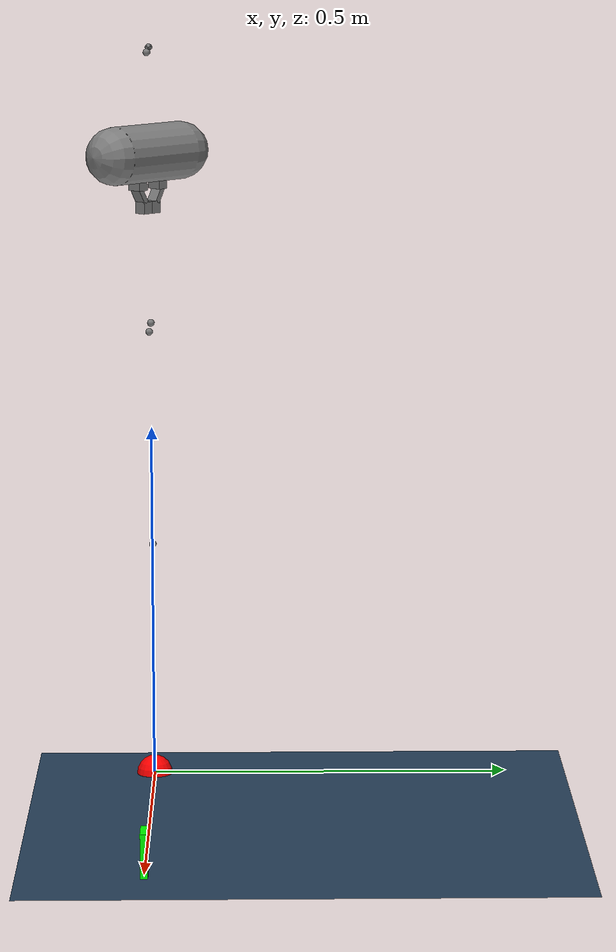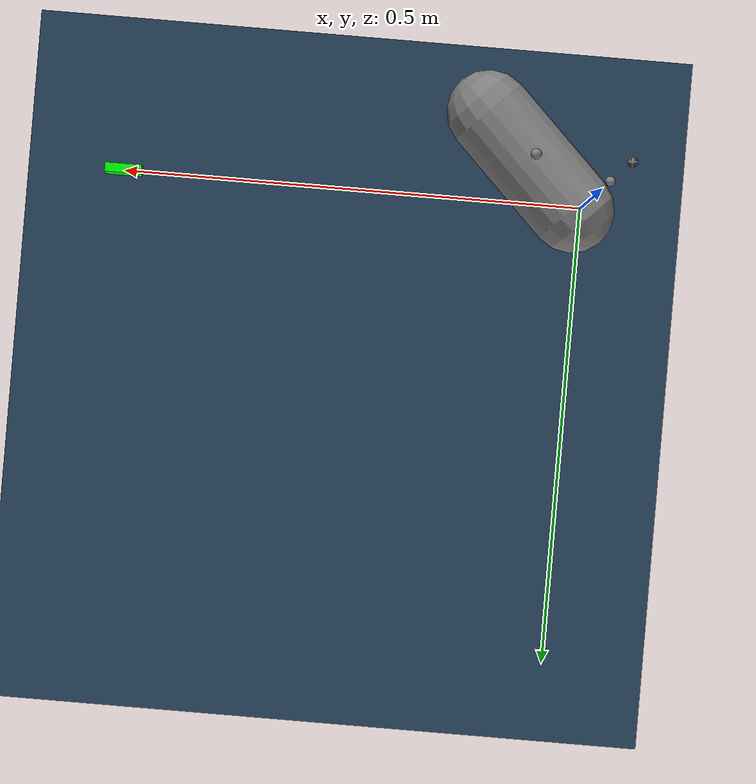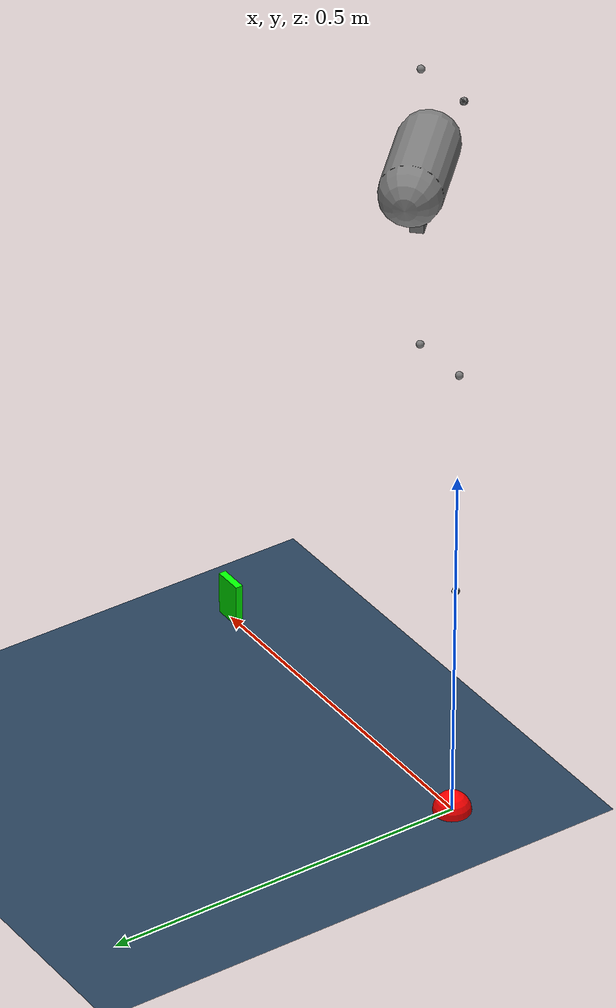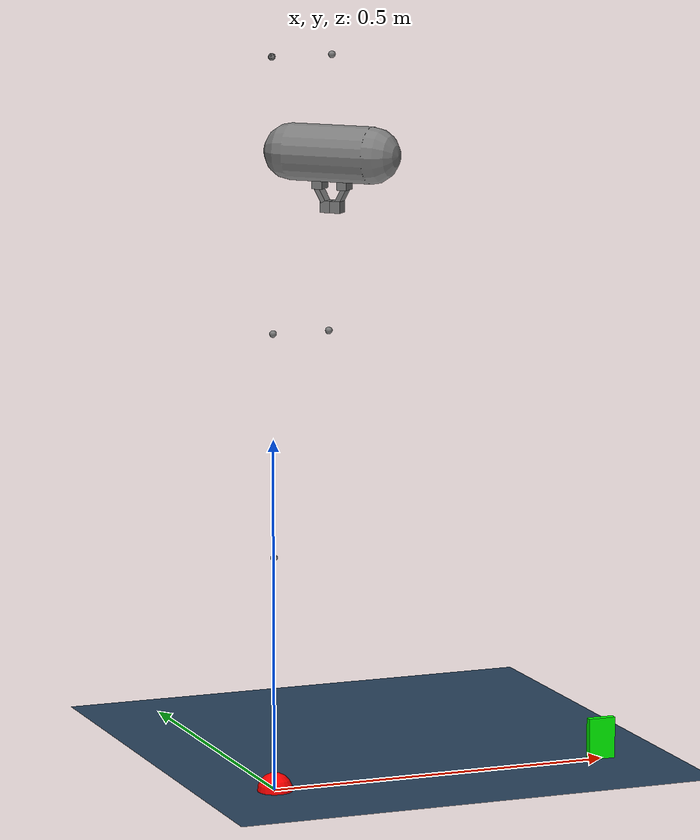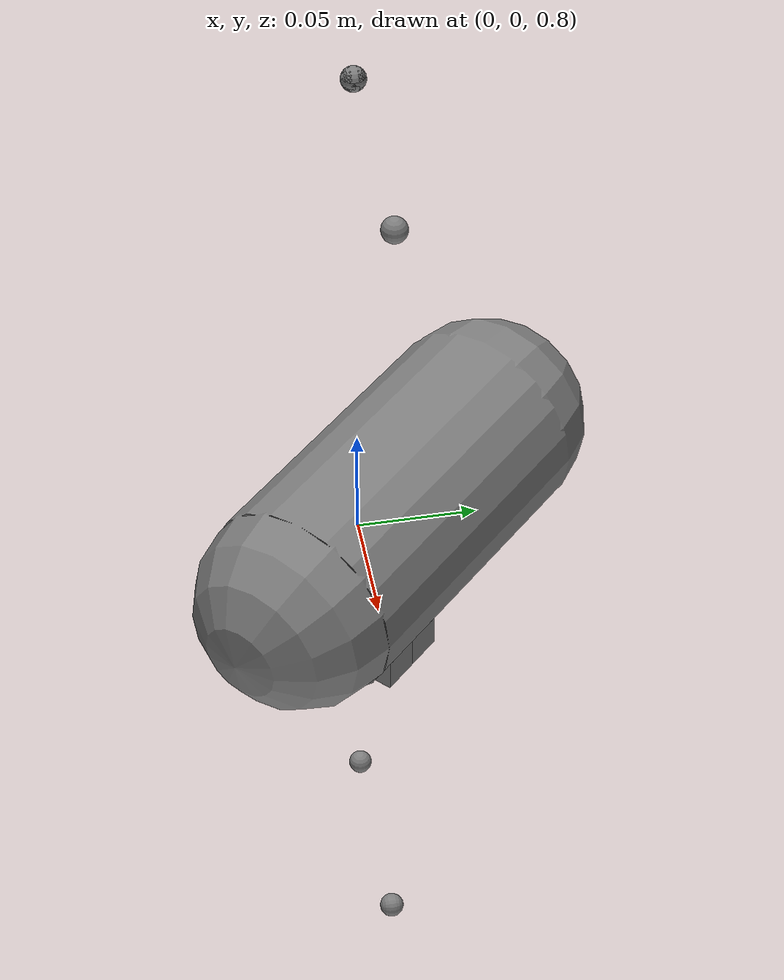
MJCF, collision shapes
<mujoco model="panda scene">
  <include file="mjx_scene.xml"/>

  <worldbody>
    <body name="box" pos="0.5 0 0.03">
      <freejoint/>
      <geom type="box" name="box" size="0.02 0.005 0.03" condim="3" mass="0.1"
       friction="1 .03 .003" rgba="0 1 0 1" contype="2" conaffinity="1" solref="0.01 1"/>
    </body>
    <body mocap="true" name="mocap_target">
      <geom type="sphere" size="0.025" rgba="1 0 0 1" contype="0" conaffinity="0"/>
    </body>
  </worldbody>

  <worldbody>
    <camera name="top" pos="0 0 1" zaxis="0 0 1" fovy="60"/>
    <camera name="side" pos="0 -1 0.5" zaxis="0 -1 0" fovy="60"/>
  </worldbody>

  <keyframe>
    <key name="home"
      qpos="0 0.3 0 -1.57079 0 2.0 0.7853 0.00 0.04 0.7 0 0.03 1 0 0 0"
      ctrl="0 0.3 0 -1.57079 0 2.0 0.7853 0.00"/>
    <key name="pickup"
      qpos="0.2897 0.50732 -0.140016 -2.176 -0.0310497 2.51592 -0.49251 0.04 0.0399982 0.511684 0.0645413 0.0298665 0.665781 2.76848e-17 -2.27527e-17 -0.746147"
      ctrl="0.2897 0.423 -0.144392 -2.13105 -0.0291743 2.52586 -0.492492 0.04"/>
    <key name="pickup1"
      qpos='0.2897 0.496673 -0.142836 -2.14746 -0.0295746 2.52378 -0.492496 0.04 0.0399988 0.529553 0.0731702 0.0299388 0.94209 8.84613e-06 -4.97524e-06 -0.335361'
      ctrl="0.2897 0.458 -0.144392 -2.13105 -0.0291743 2.52586 -0.492492 0.04"/>
  </keyframe>
</mujoco>

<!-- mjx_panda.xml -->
<mujoco model="panda">
  <compiler angle="radian" meshdir="assets" autolimits="true"/>

  <default>
    <default class="panda">
      <material specular="0.5" shininess="0.25"/>
      <joint armature="0.1" damping="1" axis="0 0 1" range="-2.8973 2.8973"/>
      <general dyntype="none" biastype="affine" ctrlrange="-2.8973 2.8973" forcerange="-87 87"/>
      <position forcerange="-100 100"/>
      <default class="finger">
        <joint axis="0 1 0" type="slide" range="0 0.04"/>
      </default>

      <default class="visual">
        <geom type="mesh" contype="0" conaffinity="0" group="2"/>
      </default>
      <default class="collision">
        <geom group="3" type="mesh" contype="0" conaffinity="0"/>
        <default class="primitive_collision">
          <geom group="3" type="box" contype="0" conaffinity="0"
           condim="3" solimp="0.99 0.995 0.01" solref="0.01 1" friction="1 0.005 0.0001"/>
          <default class="fingertip_pad_collision_1">
            <geom type="box" size="0.011 0.0075 0.01" pos="0 0.0185 0.011"/>
          </default>
          <default class="fingertip_pad_collision_2">
            <geom type="box" size="0.011 0.0044 0.0019" pos="0 0.0068 0.0022"/>
          </default>
          <default class="fingertip_pad_collision_3">
            <geom type="box" size="0.00875 0.0035 0.01175" pos="0 0.0159 0.02835" quat="1 0.25 0 0"/>
          </default>
          <default class="fingertip_pad_collision_4">
            <geom type="box" size="0.00875 0.0076 0.00825" pos="0 0.00758 0.04525" conaffinity="3"/>
          </default>
        </default>
      </default>
    </default>
  </default>

  <asset>
    <material class="panda" name="white" rgba="1 1 1 1"/>
    <material class="panda" name="off_white" rgba="0.901961 0.921569 0.929412 1"/>
    <material class="panda" name="black" rgba="0.25 0.25 0.25 1"/>
    <material class="panda" name="green" rgba="0 1 0 1"/>
    <material class="panda" name="light_blue" rgba="0.039216 0.541176 0.780392 1"/>

    <!-- Collision meshes -->
    <mesh name="link0_c" file="link0.stl"/>
    <mesh name="link1_c" file="link1.stl"/>
    <mesh name="link2_c" file="link2.stl"/>
    <mesh name="link3_c" file="link3.stl"/>
    <mesh name="link4_c" file="link4.stl"/>
    <mesh name="link5_c0" file="link5_collision_0.obj"/>
    <mesh name="link5_c1" file="link5_collision_1.obj"/>
    <mesh name="link5_c2" file="link5_collision_2.obj"/>
    <mesh name="link6_c" file="link6.stl"/>
    <mesh name="link7_c" file="link7.stl"/>
    <mesh name="hand_c" file="hand.stl"/>

    <!-- Visual meshes -->
    <mesh file="link0_0.obj"/>
    <mesh file="link0_1.obj"/>
    <mesh file="link0_2.obj"/>
    <mesh file="link0_3.obj"/>
    <mesh file="link0_4.obj"/>
    <mesh file="link0_5.obj"/>
    <mesh file="link0_7.obj"/>
    <mesh file="link0_8.obj"/>
    <mesh file="link0_9.obj"/>
    <mesh file="link0_10.obj"/>
    <mesh file="link0_11.obj"/>
    <mesh file="link1.obj"/>
    <mesh file="link2.obj"/>
    <mesh file="link3_0.obj"/>
    <mesh file="link3_1.obj"/>
    <mesh file="link3_2.obj"/>
    <mesh file="link3_3.obj"/>
    <mesh file="link4_0.obj"/>
    <mesh file="link4_1.obj"/>
    <mesh file="link4_2.obj"/>
    <mesh file="link4_3.obj"/>
    <mesh file="link5_0.obj"/>
    <mesh file="link5_1.obj"/>
    <mesh file="link5_2.obj"/>
    <mesh file="link6_0.obj"/>
    <mesh file="link6_1.obj"/>
    <mesh file="link6_2.obj"/>
    <mesh file="link6_3.obj"/>
    <mesh file="link6_4.obj"/>
    <mesh file="link6_5.obj"/>
    <mesh file="link6_6.obj"/>
    <mesh file="link6_7.obj"/>
    <mesh file="link6_8.obj"/>
    <mesh file="link6_9.obj"/>
    <mesh file="link6_10.obj"/>
    <mesh file="link6_11.obj"/>
    <mesh file="link6_12.obj"/>
    <mesh file="link6_13.obj"/>
    <mesh file="link6_14.obj"/>
    <mesh file="link6_15.obj"/>
    <mesh file="link6_16.obj"/>
    <mesh file="link7_0.obj"/>
    <mesh file="link7_1.obj"/>
    <mesh file="link7_2.obj"/>
    <mesh file="link7_3.obj"/>
    <mesh file="link7_4.obj"/>
    <mesh file="link7_5.obj"/>
    <mesh file="link7_6.obj"/>
    <mesh file="link7_7.obj"/>
    <mesh file="hand_0.obj"/>
    <mesh file="hand_1.obj"/>
    <mesh file="hand_2.obj"/>
    <mesh file="hand_3.obj"/>
    <mesh file="hand_4.obj"/>
    <mesh file="finger_0.obj"/>
    <mesh file="finger_1.obj"/>
  </asset>

  <worldbody>
    <light name="top" pos="0 0 2" mode="trackcom"/>
    <body name="link0" childclass="panda">
      <inertial mass="0.629769" pos="-0.041018 -0.00014 0.049974"
        fullinertia="0.00315 0.00388 0.004285 8.2904e-7 0.00015 8.2299e-6"/>
      <geom mesh="link0_0" material="off_white" class="visual"/>
      <geom mesh="link0_1" material="black" class="visual"/>
      <geom mesh="link0_2" material="off_white" class="visual"/>
      <geom mesh="link0_3" material="black" class="visual"/>
      <geom mesh="link0_4" material="off_white" class="visual"/>
      <geom mesh="link0_5" material="black" class="visual"/>
      <geom mesh="link0_7" material="white" class="visual"/>
      <geom mesh="link0_8" material="white" class="visual"/>
      <geom mesh="link0_9" material="black" class="visual"/>
      <geom mesh="link0_10" material="off_white" class="visual"/>
      <geom mesh="link0_11" material="white" class="visual"/>
      <geom mesh="link0_c" class="collision"/>
      <body name="link1" pos="0 0 0.333">
        <inertial mass="4.970684" pos="0.003875 0.002081 -0.04762"
          fullinertia="0.70337 0.70661 0.0091170 -0.00013900 0.0067720 0.019169"/>
        <joint name="joint1" damping="40"/>
        <site name="site_joint1"/>
        <geom material="white" mesh="link1" class="visual"/>
        <geom mesh="link1_c" class="collision"/>
        <body name="link2" quat="1 -1 0 0">
          <inertial mass="0.646926" pos="-0.003141 -0.02872 0.003495"
            fullinertia="0.0079620 2.8110e-2 2.5995e-2 -3.925e-3 1.0254e-2 7.04e-4"/>
          <joint name="joint2" range="-1.7628 1.7628" damping="40"/>
          <site name="site_joint2"/>
          <geom material="white" mesh="link2" class="visual"/>
          <geom mesh="link2_c" class="collision"/>
          <body name="link3" pos="0 -0.316 0" quat="1 1 0 0">
            <joint name="joint3" damping="40"/>
            <site name="site_joint3"/>
            <inertial mass="3.228604" pos="2.7518e-2 3.9252e-2 -6.6502e-2"
              fullinertia="3.7242e-2 3.6155e-2 1.083e-2 -4.761e-3 -1.1396e-2 -1.2805e-2"/>
            <geom mesh="link3_0" material="white" class="visual"/>
            <geom mesh="link3_1" material="white" class="visual"/>
            <geom mesh="link3_2" material="white" class="visual"/>
            <geom mesh="link3_3" material="black" class="visual"/>
            <geom mesh="link3_c" class="collision"/>
            <body name="link4" pos="0.0825 0 0" quat="1 1 0 0">
              <inertial mass="3.587895" pos="-5.317e-2 1.04419e-1 2.7454e-2"
                fullinertia="2.5853e-2 1.9552e-2 2.8323e-2 7.796e-3 -1.332e-3 8.641e-3"/>
              <joint name="joint4" range="-3.0718 -0.0698" damping="40"/>
              <site name="site_joint4"/>
              <geom mesh="link4_0" material="white" class="visual"/>
              <geom mesh="link4_1" material="white" class="visual"/>
              <geom mesh="link4_2" material="black" class="visual"/>
              <geom mesh="link4_3" material="white" class="visual"/>
              <geom mesh="link4_c" class="collision"/>
              <body name="link5" pos="-0.0825 0.384 0" quat="1 -1 0 0">
                <inertial mass="1.225946" pos="-1.1953e-2 4.1065e-2 -3.8437e-2"
                  fullinertia="3.5549e-2 2.9474e-2 8.627e-3 -2.117e-3 -4.037e-3 2.29e-4"/>
                <joint name="joint5" damping="2"/>
                <site name="site_joint5"/>
                <geom mesh="link5_0" material="black" class="visual"/>
                <geom mesh="link5_1" material="white" class="visual"/>
                <geom mesh="link5_2" material="white" class="visual"/>
                <geom mesh="link5_c0" class="collision"/>
                <geom mesh="link5_c1" class="collision"/>
                <geom mesh="link5_c2" class="collision"/>
                <body name="link6" quat="1 1 0 0">
                  <inertial mass="1.666555" pos="6.0149e-2 -1.4117e-2 -1.0517e-2"
                    fullinertia="1.964e-3 4.354e-3 5.433e-3 1.09e-4 -1.158e-3 3.41e-4"/>
                  <joint name="joint6" range="-0.0175 3.7525" damping="2"/>
                  <site name="site_joint6"/>
                  <geom mesh="link6_0" material="off_white" class="visual"/>
                  <geom mesh="link6_1" material="white" class="visual"/>
                  <geom mesh="link6_2" material="black" class="visual"/>
                  <geom mesh="link6_3" material="white" class="visual"/>
                  <geom mesh="link6_4" material="white" class="visual"/>
                  <geom mesh="link6_5" material="white" class="visual"/>
                  <geom mesh="link6_6" material="white" class="visual"/>
                  <geom mesh="link6_7" material="light_blue" class="visual"/>
                  <geom mesh="link6_8" material="light_blue" class="visual"/>
                  <geom mesh="link6_9" material="black" class="visual"/>
                  <geom mesh="link6_10" material="black" class="visual"/>
                  <geom mesh="link6_11" material="white" class="visual"/>
                  <geom mesh="link6_12" material="green" class="visual"/>
                  <geom mesh="link6_13" material="white" class="visual"/>
                  <geom mesh="link6_14" material="black" class="visual"/>
                  <geom mesh="link6_15" material="black" class="visual"/>
                  <geom mesh="link6_16" material="white" class="visual"/>
                  <geom mesh="link6_c" class="collision"/>
                  <body name="link7" pos="0.088 0 0" quat="1 1 0 0">
                    <inertial mass="7.35522e-01" pos="1.0517e-2 -4.252e-3 6.1597e-2"
                      fullinertia="1.2516e-2 1.0027e-2 4.815e-3 -4.28e-4 -1.196e-3 -7.41e-4"/>
                    <joint name="joint7" damping="2"/>
                    <site name="site_joint7"/>
                    <geom mesh="link7_0" material="white" class="visual"/>
                    <geom mesh="link7_1" material="black" class="visual"/>
                    <geom mesh="link7_2" material="black" class="visual"/>
                    <geom mesh="link7_3" material="black" class="visual"/>
                    <geom mesh="link7_4" material="black" class="visual"/>
                    <geom mesh="link7_5" material="black" class="visual"/>
                    <geom mesh="link7_6" material="black" class="visual"/>
                    <geom mesh="link7_7" material="white" class="visual"/>
                    <geom mesh="link7_c" class="collision"/>
                    <body name="hand" pos="0 0 0.107" quat="0.9238795 0 0 -0.3826834">
                      <site name="end_effector" pos="0 0 0.0584" size="0.01" rgba="1 0 0 1"/>
                      <camera name="handcam_left" mode="fixed" pos="0.05 -0.05 0.01" euler="3.141592653589793 0 -1.5708" fovy="105"/>
                      <camera name="handcam_front" mode="fixed" pos="0.05 0.0 0.01" euler="3.141592653589793 0 -1.5708" fovy="105"/>
                      <camera name="handcam_back" mode="fixed" pos="-0.05 0.0 0.01" euler="3.141592653589793 0 -1.5708" fovy="105"/>
                      <camera name="handcam_right" mode="fixed" pos="0.05 0.05 0.01" euler="3.141592653589793 0 -1.5708" fovy="105"/>
                      <inertial mass="0.73" pos="-0.01 0 0.03" diaginertia="0.001 0.0025 0.0017"/>
                      <geom mesh="hand_0" material="off_white" class="visual"/>
                      <geom mesh="hand_1" material="black" class="visual"/>
                      <geom mesh="hand_2" material="black" class="visual"/>
                      <geom mesh="hand_3" material="white" class="visual"/>
                      <geom mesh="hand_4" material="off_white" class="visual"/>
                      <geom mesh="hand_c" class="collision"/>
                      <geom name="hand_capsule" type="capsule"
                       class="collision" conaffinity="1" size="0.04 0.06"
                       quat="1 1 0 0" pos="0 0 0.03"/>
                      <site name="gripper" pos="0 0 0.1"/>
                      <body name="left_finger" pos="0 0 0.0584">
                        <inertial mass="0.015" pos="0 0 0" diaginertia="2.375e-6 2.375e-6 7.5e-7"/>
                        <joint name="finger_joint1" class="finger" damping="10"/>
                        <geom mesh="finger_0" material="off_white" class="visual"/>
                        <geom mesh="finger_1" material="black" class="visual"/>
                        <geom mesh="finger_0" class="collision"/>
                        <geom class="fingertip_pad_collision_1"/>
                        <geom class="fingertip_pad_collision_2"/>
                        <geom class="fingertip_pad_collision_3"/>
                        <geom name="left_finger_pad" class="fingertip_pad_collision_4"/>
                      </body>
                      <body name="right_finger" pos="0 0 0.0584" quat="0 0 0 1">
                        <inertial mass="0.015" pos="0 0 0" diaginertia="2.375e-6 2.375e-6 7.5e-7"/>
                        <joint name="finger_joint2" class="finger" damping="10"/>
                        <geom mesh="finger_0" material="off_white" class="visual"/>
                        <geom mesh="finger_1" material="black" class="visual"/>
                        <geom mesh="finger_0" class="collision"/>
                        <geom class="fingertip_pad_collision_1"/>
                        <geom class="fingertip_pad_collision_2"/>
                        <geom class="fingertip_pad_collision_3"/>
                        <geom name="right_finger_pad" class="fingertip_pad_collision_4"/>
                      </body>
                    </body>
                  </body>
                </body>
              </body>
            </body>
          </body>
        </body>
      </body>
    </body>
  </worldbody>

  <equality>
    <joint joint1="finger_joint1" joint2="finger_joint2" solimp="0.95 0.99 0.001" solref="0.005 1"/>
  </equality>

  <actuator>
    <position class="panda" name="actuator1" joint="joint1" kp="1000" kv="20"
     ctrlrange="-2.8973 2.8973"/>
    <position class="panda" name="actuator2" joint="joint2" kp="1000" kv="20"
     ctrlrange="-1.7628 1.7628"/>
    <position class="panda" name="actuator3" joint="joint3" kp="750" kv="4"
     ctrlrange="-2.8973 2.8973"/>
    <position class="panda" name="actuator4" joint="joint4" kp="750" kv="4"
     ctrlrange="-3.0718 -0.0698"/>
    <position class="panda" name="actuator5" joint="joint5" kp="300" kv="2"
     forcerange="-12 12" ctrlrange="-2.8973 2.8973"/>
    <position class="panda" name="actuator6" joint="joint6" kp="300" kv="2" forcerange="-12 12"
      ctrlrange="-0.0175 3.7525"/>
    <position class="panda" name="actuator7" joint="joint7" kp="300" kv="2" forcerange="-12 12"/>
    <general class="panda" name="actuator8" joint="finger_joint1"
     ctrlrange="0 0.04" gainprm="350 0 0" biasprm="0 -350 -10" forcerange="-200 200"/>

  </actuator>

   <sensor>
    <torque name="torque1" site="site_joint1"/>
    <torque name="torque2" site="site_joint2"/>
    <torque name="torque3" site="site_joint3"/>
    <torque name="torque4" site="site_joint4"/>
    <torque name="torque5" site="site_joint5"/>
    <torque name="torque6" site="site_joint6"/>
    <torque name="torque7" site="site_joint7"/>
  </sensor>
</mujoco>

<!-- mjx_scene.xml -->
<mujoco model="panda scene">
  <include file="mjx_panda.xml"/>

  <statistic center="0.3 0 0.4" extent="1"/>

  <option timestep="0.005" iterations="5" ls_iterations="8" integrator="implicitfast">
    <flag eulerdamp="disable"/>
  </option>

  <custom>
    <numeric data="12" name="max_contact_points"/>
  </custom>

  <visual>
    <headlight diffuse="0.6 0.6 0.6" ambient="0.3 0.3 0.3" specular="0 0 0"/>
    <rgba haze="0.15 0.25 0.35 1"/>
    <global azimuth="120" elevation="-20" offwidth="1920" offheight="1080"/>
    <scale contactwidth="0.075" contactheight="0.025" forcewidth="0.05" com="0.05" framewidth="0.01" framelength="0.2"/>
  </visual>

  <asset>
    <texture type="skybox" builtin="gradient" rgb1="0.3 0.5 0.7" rgb2="0 0 0" width="512" height="3072"/>
    <texture type="2d" name="groundplane" builtin="checker" mark="edge" rgb1="0.2 0.3 0.4" rgb2="0.1 0.2 0.3"
      markrgb="0.8 0.8 0.8" width="300" height="300"/>
    <material name="groundplane" texture="groundplane" texuniform="true" texrepeat="5 5" reflectance="0.2"/>
  </asset>

  <worldbody>
    <light pos="0 0 1.5" dir="0 0 -1" directional="true"/>
    <geom name="floor" size="0 0 0.05" type="plane" material="groundplane" contype="1"/>
  </worldbody>
</mujoco>
